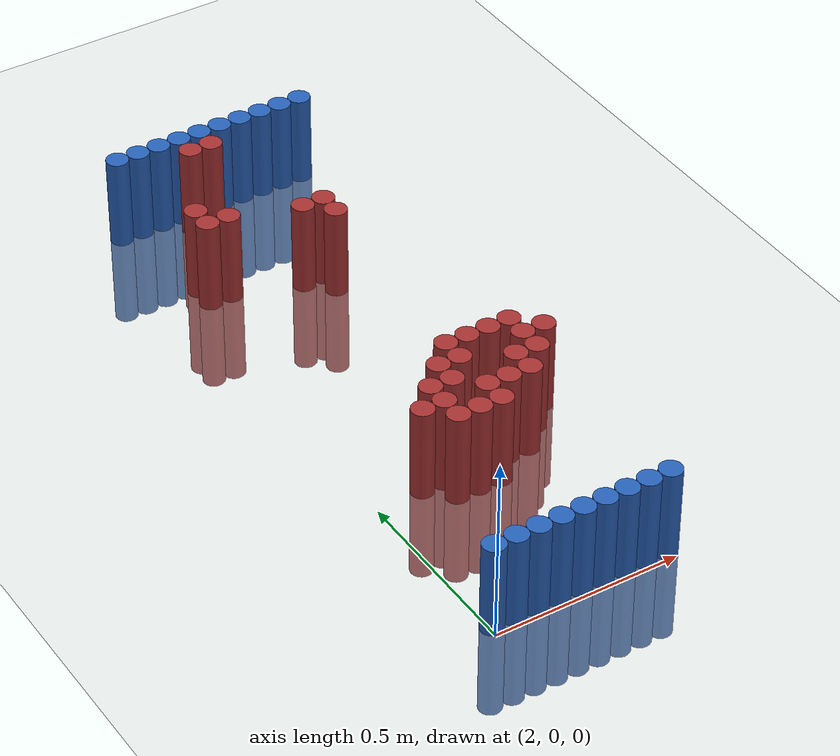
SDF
<sdf version="1.6">
 <world name="default">
  <model name="ground_plane">
   <static>1</static>
   <link name="link">
    <collision name="collision">
     <geometry><plane><normal>0 0 1</normal><size>100 100</size></plane></geometry>
     <surface><friction><ode><mu>100</mu><mu2>50</mu2></ode></friction></surface>
    </collision>
    <visual name="visual">
     <cast_shadows>0</cast_shadows>
     <geometry><plane><normal>0 0 1</normal><size>100 100</size></plane></geometry>
     <material>
      <script><uri>file://media/materials/scripts/gazebo.material</uri><name>Gazebo/Grey</name></script>
     </material>
    </visual>
   </link>
  </model>
  <model name="unit_cylinder_93">
   <static>1</static>
   <pose>2.010000 0.030000 0.000000 0.000000 0.000000 0.000000</pose>
   <link name="link">
    <inertial>
     <mass>1</mass>
     <inertia><ixx>0.145833</ixx><ixy>0</ixy><ixz>0</ixz><iyy>0.145833</iyy><iyz>0</iyz><izz>0.125</izz></inertia>
    </inertial>
    <collision name="collision">
     <geometry><cylinder><radius>0.030000</radius><length>0.5</length></cylinder></geometry>
    </collision>
    <visual name="visual">
     <geometry><cylinder><radius>0.030000</radius><length>0.5</length></cylinder></geometry>
     <material>
      <ambient>0.152000 0.379000 0.720000 1</ambient>
      <diffuse>0.152000 0.379000 0.720000 1</diffuse>
     </material>
     <material>
      <script><name>Gazebo/Grey</name><uri>file://media/materials/scripts/gazebo.material</uri></script>
     </material>
    </visual>
   </link>
  </model>
  <model name="unit_cylinder_94">
   <static>1</static>
   <pose>2.010000 1.770000 0.000000 0.000000 0.000000 0.000000</pose>
   <link name="link">
    <inertial>
     <mass>1</mass>
     <inertia><ixx>0.145833</ixx><ixy>0</ixy><ixz>0</ixz><iyy>0.145833</iyy><iyz>0</iyz><izz>0.125</izz></inertia>
    </inertial>
    <collision name="collision">
     <geometry><cylinder><radius>0.030000</radius><length>0.5</length></cylinder></geometry>
    </collision>
    <visual name="visual">
     <geometry><cylinder><radius>0.030000</radius><length>0.5</length></cylinder></geometry>
     <material>
      <ambient>0.152000 0.379000 0.720000 1</ambient>
      <diffuse>0.152000 0.379000 0.720000 1</diffuse>
     </material>
     <material>
      <script><name>Gazebo/Grey</name><uri>file://media/materials/scripts/gazebo.material</uri></script>
     </material>
    </visual>
   </link>
  </model>
  <model name="unit_cylinder_95">
   <static>1</static>
   <pose>2.070000 1.770000 0.000000 0.000000 0.000000 0.000000</pose>
   <link name="link">
    <inertial>
     <mass>1</mass>
     <inertia><ixx>0.145833</ixx><ixy>0</ixy><ixz>0</ixz><iyy>0.145833</iyy><iyz>0</iyz><izz>0.125</izz></inertia>
    </inertial>
    <collision name="collision">
     <geometry><cylinder><radius>0.030000</radius><length>0.5</length></cylinder></geometry>
    </collision>
    <visual name="visual">
     <geometry><cylinder><radius>0.030000</radius><length>0.5</length></cylinder></geometry>
     <material>
      <ambient>0.152000 0.379000 0.720000 1</ambient>
      <diffuse>0.152000 0.379000 0.720000 1</diffuse>
     </material>
     <material>
      <script><name>Gazebo/Grey</name><uri>file://media/materials/scripts/gazebo.material</uri></script>
     </material>
    </visual>
   </link>
  </model>
  <model name="unit_cylinder_96">
   <static>1</static>
   <pose>2.130000 1.770000 0.000000 0.000000 0.000000 0.000000</pose>
   <link name="link">
    <inertial>
     <mass>1</mass>
     <inertia><ixx>0.145833</ixx><ixy>0</ixy><ixz>0</ixz><iyy>0.145833</iyy><iyz>0</iyz><izz>0.125</izz></inertia>
    </inertial>
    <collision name="collision">
     <geometry><cylinder><radius>0.030000</radius><length>0.5</length></cylinder></geometry>
    </collision>
    <visual name="visual">
     <geometry><cylinder><radius>0.030000</radius><length>0.5</length></cylinder></geometry>
     <material>
      <ambient>0.152000 0.379000 0.720000 1</ambient>
      <diffuse>0.152000 0.379000 0.720000 1</diffuse>
     </material>
     <material>
      <script><name>Gazebo/Grey</name><uri>file://media/materials/scripts/gazebo.material</uri></script>
     </material>
    </visual>
   </link>
  </model>
  <model name="unit_cylinder_97">
   <static>1</static>
   <pose>2.190000 1.770000 0.000000 0.000000 0.000000 0.000000</pose>
   <link name="link">
    <inertial>
     <mass>1</mass>
     <inertia><ixx>0.145833</ixx><ixy>0</ixy><ixz>0</ixz><iyy>0.145833</iyy><iyz>0</iyz><izz>0.125</izz></inertia>
    </inertial>
    <collision name="collision">
     <geometry><cylinder><radius>0.030000</radius><length>0.5</length></cylinder></geometry>
    </collision>
    <visual name="visual">
     <geometry><cylinder><radius>0.030000</radius><length>0.5</length></cylinder></geometry>
     <material>
      <ambient>0.152000 0.379000 0.720000 1</ambient>
      <diffuse>0.152000 0.379000 0.720000 1</diffuse>
     </material>
     <material>
      <script><name>Gazebo/Grey</name><uri>file://media/materials/scripts/gazebo.material</uri></script>
     </material>
    </visual>
   </link>
  </model>
  <model name="unit_cylinder_98">
   <static>1</static>
   <pose>2.250000 1.770000 0.000000 0.000000 0.000000 0.000000</pose>
   <link name="link">
    <inertial>
     <mass>1</mass>
     <inertia><ixx>0.145833</ixx><ixy>0</ixy><ixz>0</ixz><iyy>0.145833</iyy><iyz>0</iyz><izz>0.125</izz></inertia>
    </inertial>
    <collision name="collision">
     <geometry><cylinder><radius>0.030000</radius><length>0.5</length></cylinder></geometry>
    </collision>
    <visual name="visual">
     <geometry><cylinder><radius>0.030000</radius><length>0.5</length></cylinder></geometry>
     <material>
      <ambient>0.152000 0.379000 0.720000 1</ambient>
      <diffuse>0.152000 0.379000 0.720000 1</diffuse>
     </material>
     <material>
      <script><name>Gazebo/Grey</name><uri>file://media/materials/scripts/gazebo.material</uri></script>
     </material>
    </visual>
   </link>
  </model>
  <model name="unit_cylinder_99">
   <static>1</static>
   <pose>2.310000 1.770000 0.000000 0.000000 0.000000 0.000000</pose>
   <link name="link">
    <inertial>
     <mass>1</mass>
     <inertia><ixx>0.145833</ixx><ixy>0</ixy><ixz>0</ixz><iyy>0.145833</iyy><iyz>0</iyz><izz>0.125</izz></inertia>
    </inertial>
    <collision name="collision">
     <geometry><cylinder><radius>0.030000</radius><length>0.5</length></cylinder></geometry>
    </collision>
    <visual name="visual">
     <geometry><cylinder><radius>0.030000</radius><length>0.5</length></cylinder></geometry>
     <material>
      <ambient>0.152000 0.379000 0.720000 1</ambient>
      <diffuse>0.152000 0.379000 0.720000 1</diffuse>
     </material>
     <material>
      <script><name>Gazebo/Grey</name><uri>file://media/materials/scripts/gazebo.material</uri></script>
     </material>
    </visual>
   </link>
  </model>
  <model name="unit_cylinder_100">
   <static>1</static>
   <pose>2.370000 1.770000 0.000000 0.000000 0.000000 0.000000</pose>
   <link name="link">
    <inertial>
     <mass>1</mass>
     <inertia><ixx>0.145833</ixx><ixy>0</ixy><ixz>0</ixz><iyy>0.145833</iyy><iyz>0</iyz><izz>0.125</izz></inertia>
    </inertial>
    <collision name="collision">
     <geometry><cylinder><radius>0.030000</radius><length>0.5</length></cylinder></geometry>
    </collision>
    <visual name="visual">
     <geometry><cylinder><radius>0.030000</radius><length>0.5</length></cylinder></geometry>
     <material>
      <ambient>0.152000 0.379000 0.720000 1</ambient>
      <diffuse>0.152000 0.379000 0.720000 1</diffuse>
     </material>
     <material>
      <script><name>Gazebo/Grey</name><uri>file://media/materials/scripts/gazebo.material</uri></script>
     </material>
    </visual>
   </link>
  </model>
  <model name="unit_cylinder_101">
   <static>1</static>
   <pose>2.430000 1.770000 0.000000 0.000000 0.000000 0.000000</pose>
   <link name="link">
    <inertial>
     <mass>1</mass>
     <inertia><ixx>0.145833</ixx><ixy>0</ixy><ixz>0</ixz><iyy>0.145833</iyy><iyz>0</iyz><izz>0.125</izz></inertia>
    </inertial>
    <collision name="collision">
     <geometry><cylinder><radius>0.030000</radius><length>0.5</length></cylinder></geometry>
    </collision>
    <visual name="visual">
     <geometry><cylinder><radius>0.030000</radius><length>0.5</length></cylinder></geometry>
     <material>
      <ambient>0.152000 0.379000 0.720000 1</ambient>
      <diffuse>0.152000 0.379000 0.720000 1</diffuse>
     </material>
     <material>
      <script><name>Gazebo/Grey</name><uri>file://media/materials/scripts/gazebo.material</uri></script>
     </material>
    </visual>
   </link>
  </model>
  <model name="unit_cylinder_102">
   <static>1</static>
   <pose>2.490000 1.770000 0.000000 0.000000 0.000000 0.000000</pose>
   <link name="link">
    <inertial>
     <mass>1</mass>
     <inertia><ixx>0.145833</ixx><ixy>0</ixy><ixz>0</ixz><iyy>0.145833</iyy><iyz>0</iyz><izz>0.125</izz></inertia>
    </inertial>
    <collision name="collision">
     <geometry><cylinder><radius>0.030000</radius><length>0.5</length></cylinder></geometry>
    </collision>
    <visual name="visual">
     <geometry><cylinder><radius>0.030000</radius><length>0.5</length></cylinder></geometry>
     <material>
      <ambient>0.152000 0.379000 0.720000 1</ambient>
      <diffuse>0.152000 0.379000 0.720000 1</diffuse>
     </material>
     <material>
      <script><name>Gazebo/Grey</name><uri>file://media/materials/scripts/gazebo.material</uri></script>
     </material>
    </visual>
   </link>
  </model>
  <model name="unit_cylinder_103">
   <static>1</static>
   <pose>2.550000 1.770000 0.000000 0.000000 0.000000 0.000000</pose>
   <link name="link">
    <inertial>
     <mass>1</mass>
     <inertia><ixx>0.145833</ixx><ixy>0</ixy><ixz>0</ixz><iyy>0.145833</iyy><iyz>0</iyz><izz>0.125</izz></inertia>
    </inertial>
    <collision name="collision">
     <geometry><cylinder><radius>0.030000</radius><length>0.5</length></cylinder></geometry>
    </collision>
    <visual name="visual">
     <geometry><cylinder><radius>0.030000</radius><length>0.5</length></cylinder></geometry>
     <material>
      <ambient>0.152000 0.379000 0.720000 1</ambient>
      <diffuse>0.152000 0.379000 0.720000 1</diffuse>
     </material>
     <material>
      <script><name>Gazebo/Grey</name><uri>file://media/materials/scripts/gazebo.material</uri></script>
     </material>
    </visual>
   </link>
  </model>
  <model name="unit_cylinder_125">
   <static>1</static>
   <pose>2.190000 1.710000 0.000000 0.000000 0.000000 0.000000</pose>
   <link name="link">
    <inertial>
     <mass>1</mass>
     <inertia><ixx>0.145833</ixx><ixy>0</ixy><ixz>0</ixz><iyy>0.145833</iyy><iyz>0</iyz><izz>0.125</izz></inertia>
    </inertial>
    <collision name="collision">
     <geometry><cylinder><radius>0.030000</radius><length>0.5</length></cylinder></geometry>
    </collision>
    <visual name="visual">
     <geometry><cylinder><radius>0.030000</radius><length>0.5</length></cylinder></geometry>
     <material>
      <ambient>0.648000 0.192000 0.192000 1</ambient>
      <diffuse>0.648000 0.192000 0.192000 1</diffuse>
     </material>
     <material>
      <script><name>Gazebo/Grey</name><uri>file://media/materials/scripts/gazebo.material</uri></script>
     </material>
    </visual>
   </link>
  </model>
  <model name="unit_cylinder_126">
   <static>1</static>
   <pose>2.250000 1.710000 0.000000 0.000000 0.000000 0.000000</pose>
   <link name="link">
    <inertial>
     <mass>1</mass>
     <inertia><ixx>0.145833</ixx><ixy>0</ixy><ixz>0</ixz><iyy>0.145833</iyy><iyz>0</iyz><izz>0.125</izz></inertia>
    </inertial>
    <collision name="collision">
     <geometry><cylinder><radius>0.030000</radius><length>0.5</length></cylinder></geometry>
    </collision>
    <visual name="visual">
     <geometry><cylinder><radius>0.030000</radius><length>0.5</length></cylinder></geometry>
     <material>
      <ambient>0.648000 0.192000 0.192000 1</ambient>
      <diffuse>0.648000 0.192000 0.192000 1</diffuse>
     </material>
     <material>
      <script><name>Gazebo/Grey</name><uri>file://media/materials/scripts/gazebo.material</uri></script>
     </material>
    </visual>
   </link>
  </model>
  <model name="unit_cylinder_129">
   <static>1</static>
   <pose>2.070000 1.470000 0.000000 0.000000 0.000000 0.000000</pose>
   <link name="link">
    <inertial>
     <mass>1</mass>
     <inertia><ixx>0.145833</ixx><ixy>0</ixy><ixz>0</ixz><iyy>0.145833</iyy><iyz>0</iyz><izz>0.125</izz></inertia>
    </inertial>
    <collision name="collision">
     <geometry><cylinder><radius>0.030000</radius><length>0.5</length></cylinder></geometry>
    </collision>
    <visual name="visual">
     <geometry><cylinder><radius>0.030000</radius><length>0.5</length></cylinder></geometry>
     <material>
      <ambient>0.648000 0.192000 0.192000 1</ambient>
      <diffuse>0.648000 0.192000 0.192000 1</diffuse>
     </material>
     <material>
      <script><name>Gazebo/Grey</name><uri>file://media/materials/scripts/gazebo.material</uri></script>
     </material>
    </visual>
   </link>
  </model>
  <model name="unit_cylinder_130">
   <static>1</static>
   <pose>2.070000 1.410000 0.000000 0.000000 0.000000 0.000000</pose>
   <link name="link">
    <inertial>
     <mass>1</mass>
     <inertia><ixx>0.145833</ixx><ixy>0</ixy><ixz>0</ixz><iyy>0.145833</iyy><iyz>0</iyz><izz>0.125</izz></inertia>
    </inertial>
    <collision name="collision">
     <geometry><cylinder><radius>0.030000</radius><length>0.5</length></cylinder></geometry>
    </collision>
    <visual name="visual">
     <geometry><cylinder><radius>0.030000</radius><length>0.5</length></cylinder></geometry>
     <material>
      <ambient>0.648000 0.192000 0.192000 1</ambient>
      <diffuse>0.648000 0.192000 0.192000 1</diffuse>
     </material>
     <material>
      <script><name>Gazebo/Grey</name><uri>file://media/materials/scripts/gazebo.material</uri></script>
     </material>
    </visual>
   </link>
  </model>
  <model name="unit_cylinder_131">
   <static>1</static>
   <pose>2.130000 1.410000 0.000000 0.000000 0.000000 0.000000</pose>
   <link name="link">
    <inertial>
     <mass>1</mass>
     <inertia><ixx>0.145833</ixx><ixy>0</ixy><ixz>0</ixz><iyy>0.145833</iyy><iyz>0</iyz><izz>0.125</izz></inertia>
    </inertial>
    <collision name="collision">
     <geometry><cylinder><radius>0.030000</radius><length>0.5</length></cylinder></geometry>
    </collision>
    <visual name="visual">
     <geometry><cylinder><radius>0.030000</radius><length>0.5</length></cylinder></geometry>
     <material>
      <ambient>0.648000 0.192000 0.192000 1</ambient>
      <diffuse>0.648000 0.192000 0.192000 1</diffuse>
     </material>
     <material>
      <script><name>Gazebo/Grey</name><uri>file://media/materials/scripts/gazebo.material</uri></script>
     </material>
    </visual>
   </link>
  </model>
  <model name="unit_cylinder_132">
   <static>1</static>
   <pose>2.310000 1.350000 0.000000 0.000000 0.000000 0.000000</pose>
   <link name="link">
    <inertial>
     <mass>1</mass>
     <inertia><ixx>0.145833</ixx><ixy>0</ixy><ixz>0</ixz><iyy>0.145833</iyy><iyz>0</iyz><izz>0.125</izz></inertia>
    </inertial>
    <collision name="collision">
     <geometry><cylinder><radius>0.030000</radius><length>0.5</length></cylinder></geometry>
    </collision>
    <visual name="visual">
     <geometry><cylinder><radius>0.030000</radius><length>0.5</length></cylinder></geometry>
     <material>
      <ambient>0.648000 0.192000 0.192000 1</ambient>
      <diffuse>0.648000 0.192000 0.192000 1</diffuse>
     </material>
     <material>
      <script><name>Gazebo/Grey</name><uri>file://media/materials/scripts/gazebo.material</uri></script>
     </material>
    </visual>
   </link>
  </model>
  <model name="unit_cylinder_133">
   <static>1</static>
   <pose>2.370000 1.350000 0.000000 0.000000 0.000000 0.000000</pose>
   <link name="link">
    <inertial>
     <mass>1</mass>
     <inertia><ixx>0.145833</ixx><ixy>0</ixy><ixz>0</ixz><iyy>0.145833</iyy><iyz>0</iyz><izz>0.125</izz></inertia>
    </inertial>
    <collision name="collision">
     <geometry><cylinder><radius>0.030000</radius><length>0.5</length></cylinder></geometry>
    </collision>
    <visual name="visual">
     <geometry><cylinder><radius>0.030000</radius><length>0.5</length></cylinder></geometry>
     <material>
      <ambient>0.648000 0.192000 0.192000 1</ambient>
      <diffuse>0.648000 0.192000 0.192000 1</diffuse>
     </material>
     <material>
      <script><name>Gazebo/Grey</name><uri>file://media/materials/scripts/gazebo.material</uri></script>
     </material>
    </visual>
   </link>
  </model>
  <model name="unit_cylinder_134">
   <static>1</static>
   <pose>2.370000 1.290000 0.000000 0.000000 0.000000 0.000000</pose>
   <link name="link">
    <inertial>
     <mass>1</mass>
     <inertia><ixx>0.145833</ixx><ixy>0</ixy><ixz>0</ixz><iyy>0.145833</iyy><iyz>0</iyz><izz>0.125</izz></inertia>
    </inertial>
    <collision name="collision">
     <geometry><cylinder><radius>0.030000</radius><length>0.5</length></cylinder></geometry>
    </collision>
    <visual name="visual">
     <geometry><cylinder><radius>0.030000</radius><length>0.5</length></cylinder></geometry>
     <material>
      <ambient>0.648000 0.192000 0.192000 1</ambient>
      <diffuse>0.648000 0.192000 0.192000 1</diffuse>
     </material>
     <material>
      <script><name>Gazebo/Grey</name><uri>file://media/materials/scripts/gazebo.material</uri></script>
     </material>
    </visual>
   </link>
  </model>
  <model name="unit_cylinder_143">
   <static>1</static>
   <pose>2.310000 0.690000 0.000000 0.000000 0.000000 0.000000</pose>
   <link name="link">
    <inertial>
     <mass>1</mass>
     <inertia><ixx>0.145833</ixx><ixy>0</ixy><ixz>0</ixz><iyy>0.145833</iyy><iyz>0</iyz><izz>0.125</izz></inertia>
    </inertial>
    <collision name="collision">
     <geometry><cylinder><radius>0.030000</radius><length>0.5</length></cylinder></geometry>
    </collision>
    <visual name="visual">
     <geometry><cylinder><radius>0.030000</radius><length>0.5</length></cylinder></geometry>
     <material>
      <ambient>0.648000 0.192000 0.192000 1</ambient>
      <diffuse>0.648000 0.192000 0.192000 1</diffuse>
     </material>
     <material>
      <script><name>Gazebo/Grey</name><uri>file://media/materials/scripts/gazebo.material</uri></script>
     </material>
    </visual>
   </link>
  </model>
  <model name="unit_cylinder_144">
   <static>1</static>
   <pose>2.370000 0.690000 0.000000 0.000000 0.000000 0.000000</pose>
   <link name="link">
    <inertial>
     <mass>1</mass>
     <inertia><ixx>0.145833</ixx><ixy>0</ixy><ixz>0</ixz><iyy>0.145833</iyy><iyz>0</iyz><izz>0.125</izz></inertia>
    </inertial>
    <collision name="collision">
     <geometry><cylinder><radius>0.030000</radius><length>0.5</length></cylinder></geometry>
    </collision>
    <visual name="visual">
     <geometry><cylinder><radius>0.030000</radius><length>0.5</length></cylinder></geometry>
     <material>
      <ambient>0.648000 0.192000 0.192000 1</ambient>
      <diffuse>0.648000 0.192000 0.192000 1</diffuse>
     </material>
     <material>
      <script><name>Gazebo/Grey</name><uri>file://media/materials/scripts/gazebo.material</uri></script>
     </material>
    </visual>
   </link>
  </model>
  <model name="unit_cylinder_145">
   <static>1</static>
   <pose>2.430000 0.690000 0.000000 0.000000 0.000000 0.000000</pose>
   <link name="link">
    <inertial>
     <mass>1</mass>
     <inertia><ixx>0.145833</ixx><ixy>0</ixy><ixz>0</ixz><iyy>0.145833</iyy><iyz>0</iyz><izz>0.125</izz></inertia>
    </inertial>
    <collision name="collision">
     <geometry><cylinder><radius>0.030000</radius><length>0.5</length></cylinder></geometry>
    </collision>
    <visual name="visual">
     <geometry><cylinder><radius>0.030000</radius><length>0.5</length></cylinder></geometry>
     <material>
      <ambient>0.648000 0.192000 0.192000 1</ambient>
      <diffuse>0.648000 0.192000 0.192000 1</diffuse>
     </material>
     <material>
      <script><name>Gazebo/Grey</name><uri>file://media/materials/scripts/gazebo.material</uri></script>
     </material>
    </visual>
   </link>
  </model>
  <model name="unit_cylinder_146">
   <static>1</static>
   <pose>2.490000 0.690000 0.000000 0.000000 0.000000 0.000000</pose>
   <link name="link">
    <inertial>
     <mass>1</mass>
     <inertia><ixx>0.145833</ixx><ixy>0</ixy><ixz>0</ixz><iyy>0.145833</iyy><iyz>0</iyz><izz>0.125</izz></inertia>
    </inertial>
    <collision name="collision">
     <geometry><cylinder><radius>0.030000</radius><length>0.5</length></cylinder></geometry>
    </collision>
    <visual name="visual">
     <geometry><cylinder><radius>0.030000</radius><length>0.5</length></cylinder></geometry>
     <material>
      <ambient>0.648000 0.192000 0.192000 1</ambient>
      <diffuse>0.648000 0.192000 0.192000 1</diffuse>
     </material>
     <material>
      <script><name>Gazebo/Grey</name><uri>file://media/materials/scripts/gazebo.material</uri></script>
     </material>
    </visual>
   </link>
  </model>
  <model name="unit_cylinder_149">
   <static>1</static>
   <pose>2.250000 0.630000 0.000000 0.000000 0.000000 0.000000</pose>
   <link name="link">
    <inertial>
     <mass>1</mass>
     <inertia><ixx>0.145833</ixx><ixy>0</ixy><ixz>0</ixz><iyy>0.145833</iyy><iyz>0</iyz><izz>0.125</izz></inertia>
    </inertial>
    <collision name="collision">
     <geometry><cylinder><radius>0.030000</radius><length>0.5</length></cylinder></geometry>
    </collision>
    <visual name="visual">
     <geometry><cylinder><radius>0.030000</radius><length>0.5</length></cylinder></geometry>
     <material>
      <ambient>0.648000 0.192000 0.192000 1</ambient>
      <diffuse>0.648000 0.192000 0.192000 1</diffuse>
     </material>
     <material>
      <script><name>Gazebo/Grey</name><uri>file://media/materials/scripts/gazebo.material</uri></script>
     </material>
    </visual>
   </link>
  </model>
  <model name="unit_cylinder_150">
   <static>1</static>
   <pose>2.310000 0.630000 0.000000 0.000000 0.000000 0.000000</pose>
   <link name="link">
    <inertial>
     <mass>1</mass>
     <inertia><ixx>0.145833</ixx><ixy>0</ixy><ixz>0</ixz><iyy>0.145833</iyy><iyz>0</iyz><izz>0.125</izz></inertia>
    </inertial>
    <collision name="collision">
     <geometry><cylinder><radius>0.030000</radius><length>0.5</length></cylinder></geometry>
    </collision>
    <visual name="visual">
     <geometry><cylinder><radius>0.030000</radius><length>0.5</length></cylinder></geometry>
     <material>
      <ambient>0.648000 0.192000 0.192000 1</ambient>
      <diffuse>0.648000 0.192000 0.192000 1</diffuse>
     </material>
     <material>
      <script><name>Gazebo/Grey</name><uri>file://media/materials/scripts/gazebo.material</uri></script>
     </material>
    </visual>
   </link>
  </model>
  <model name="unit_cylinder_151">
   <static>1</static>
   <pose>2.490000 0.630000 0.000000 0.000000 0.000000 0.000000</pose>
   <link name="link">
    <inertial>
     <mass>1</mass>
     <inertia><ixx>0.145833</ixx><ixy>0</ixy><ixz>0</ixz><iyy>0.145833</iyy><iyz>0</iyz><izz>0.125</izz></inertia>
    </inertial>
    <collision name="collision">
     <geometry><cylinder><radius>0.030000</radius><length>0.5</length></cylinder></geometry>
    </collision>
    <visual name="visual">
     <geometry><cylinder><radius>0.030000</radius><length>0.5</length></cylinder></geometry>
     <material>
      <ambient>0.648000 0.192000 0.192000 1</ambient>
      <diffuse>0.648000 0.192000 0.192000 1</diffuse>
     </material>
     <material>
      <script><name>Gazebo/Grey</name><uri>file://media/materials/scripts/gazebo.material</uri></script>
     </material>
    </visual>
   </link>
  </model>
  <model name="unit_cylinder_152">
   <static>1</static>
   <pose>2.550000 0.630000 0.000000 0.000000 0.000000 0.000000</pose>
   <link name="link">
    <inertial>
     <mass>1</mass>
     <inertia><ixx>0.145833</ixx><ixy>0</ixy><ixz>0</ixz><iyy>0.145833</iyy><iyz>0</iyz><izz>0.125</izz></inertia>
    </inertial>
    <collision name="collision">
     <geometry><cylinder><radius>0.030000</radius><length>0.5</length></cylinder></geometry>
    </collision>
    <visual name="visual">
     <geometry><cylinder><radius>0.030000</radius><length>0.5</length></cylinder></geometry>
     <material>
      <ambient>0.648000 0.192000 0.192000 1</ambient>
      <diffuse>0.648000 0.192000 0.192000 1</diffuse>
     </material>
     <material>
      <script><name>Gazebo/Grey</name><uri>file://media/materials/scripts/gazebo.material</uri></script>
     </material>
    </visual>
   </link>
  </model>
  <model name="unit_cylinder_155">
   <static>1</static>
   <pose>2.190000 0.570000 0.000000 0.000000 0.000000 0.000000</pose>
   <link name="link">
    <inertial>
     <mass>1</mass>
     <inertia><ixx>0.145833</ixx><ixy>0</ixy><ixz>0</ixz><iyy>0.145833</iyy><iyz>0</iyz><izz>0.125</izz></inertia>
    </inertial>
    <collision name="collision">
     <geometry><cylinder><radius>0.030000</radius><length>0.5</length></cylinder></geometry>
    </collision>
    <visual name="visual">
     <geometry><cylinder><radius>0.030000</radius><length>0.5</length></cylinder></geometry>
     <material>
      <ambient>0.648000 0.192000 0.192000 1</ambient>
      <diffuse>0.648000 0.192000 0.192000 1</diffuse>
     </material>
     <material>
      <script><name>Gazebo/Grey</name><uri>file://media/materials/scripts/gazebo.material</uri></script>
     </material>
    </visual>
   </link>
  </model>
  <model name="unit_cylinder_156">
   <static>1</static>
   <pose>2.250000 0.570000 0.000000 0.000000 0.000000 0.000000</pose>
   <link name="link">
    <inertial>
     <mass>1</mass>
     <inertia><ixx>0.145833</ixx><ixy>0</ixy><ixz>0</ixz><iyy>0.145833</iyy><iyz>0</iyz><izz>0.125</izz></inertia>
    </inertial>
    <collision name="collision">
     <geometry><cylinder><radius>0.030000</radius><length>0.5</length></cylinder></geometry>
    </collision>
    <visual name="visual">
     <geometry><cylinder><radius>0.030000</radius><length>0.5</length></cylinder></geometry>
     <material>
      <ambient>0.648000 0.192000 0.192000 1</ambient>
      <diffuse>0.648000 0.192000 0.192000 1</diffuse>
     </material>
     <material>
      <script><name>Gazebo/Grey</name><uri>file://media/materials/scripts/gazebo.material</uri></script>
     </material>
    </visual>
   </link>
  </model>
  <model name="unit_cylinder_157">
   <static>1</static>
   <pose>2.430000 0.570000 0.000000 0.000000 0.000000 0.000000</pose>
   <link name="link">
    <inertial>
     <mass>1</mass>
     <inertia><ixx>0.145833</ixx><ixy>0</ixy><ixz>0</ixz><iyy>0.145833</iyy><iyz>0</iyz><izz>0.125</izz></inertia>
    </inertial>
    <collision name="collision">
     <geometry><cylinder><radius>0.030000</radius><length>0.5</length></cylinder></geometry>
    </collision>
    <visual name="visual">
     <geometry><cylinder><radius>0.030000</radius><length>0.5</length></cylinder></geometry>
     <material>
      <ambient>0.648000 0.192000 0.192000 1</ambient>
      <diffuse>0.648000 0.192000 0.192000 1</diffuse>
     </material>
     <material>
      <script><name>Gazebo/Grey</name><uri>file://media/materials/scripts/gazebo.material</uri></script>
     </material>
    </visual>
   </link>
  </model>
  <model name="unit_cylinder_158">
   <static>1</static>
   <pose>2.490000 0.570000 0.000000 0.000000 0.000000 0.000000</pose>
   <link name="link">
    <inertial>
     <mass>1</mass>
     <inertia><ixx>0.145833</ixx><ixy>0</ixy><ixz>0</ixz><iyy>0.145833</iyy><iyz>0</iyz><izz>0.125</izz></inertia>
    </inertial>
    <collision name="collision">
     <geometry><cylinder><radius>0.030000</radius><length>0.5</length></cylinder></geometry>
    </collision>
    <visual name="visual">
     <geometry><cylinder><radius>0.030000</radius><length>0.5</length></cylinder></geometry>
     <material>
      <ambient>0.648000 0.192000 0.192000 1</ambient>
      <diffuse>0.648000 0.192000 0.192000 1</diffuse>
     </material>
     <material>
      <script><name>Gazebo/Grey</name><uri>file://media/materials/scripts/gazebo.material</uri></script>
     </material>
    </visual>
   </link>
  </model>
  <model name="unit_cylinder_161">
   <static>1</static>
   <pose>2.130000 0.510000 0.000000 0.000000 0.000000 0.000000</pose>
   <link name="link">
    <inertial>
     <mass>1</mass>
     <inertia><ixx>0.145833</ixx><ixy>0</ixy><ixz>0</ixz><iyy>0.145833</iyy><iyz>0</iyz><izz>0.125</izz></inertia>
    </inertial>
    <collision name="collision">
     <geometry><cylinder><radius>0.030000</radius><length>0.5</length></cylinder></geometry>
    </collision>
    <visual name="visual">
     <geometry><cylinder><radius>0.030000</radius><length>0.5</length></cylinder></geometry>
     <material>
      <ambient>0.648000 0.192000 0.192000 1</ambient>
      <diffuse>0.648000 0.192000 0.192000 1</diffuse>
     </material>
     <material>
      <script><name>Gazebo/Grey</name><uri>file://media/materials/scripts/gazebo.material</uri></script>
     </material>
    </visual>
   </link>
  </model>
  <model name="unit_cylinder_162">
   <static>1</static>
   <pose>2.190000 0.510000 0.000000 0.000000 0.000000 0.000000</pose>
   <link name="link">
    <inertial>
     <mass>1</mass>
     <inertia><ixx>0.145833</ixx><ixy>0</ixy><ixz>0</ixz><iyy>0.145833</iyy><iyz>0</iyz><izz>0.125</izz></inertia>
    </inertial>
    <collision name="collision">
     <geometry><cylinder><radius>0.030000</radius><length>0.5</length></cylinder></geometry>
    </collision>
    <visual name="visual">
     <geometry><cylinder><radius>0.030000</radius><length>0.5</length></cylinder></geometry>
     <material>
      <ambient>0.648000 0.192000 0.192000 1</ambient>
      <diffuse>0.648000 0.192000 0.192000 1</diffuse>
     </material>
     <material>
      <script><name>Gazebo/Grey</name><uri>file://media/materials/scripts/gazebo.material</uri></script>
     </material>
    </visual>
   </link>
  </model>
  <model name="unit_cylinder_163">
   <static>1</static>
   <pose>2.310000 0.510000 0.000000 0.000000 0.000000 0.000000</pose>
   <link name="link">
    <inertial>
     <mass>1</mass>
     <inertia><ixx>0.145833</ixx><ixy>0</ixy><ixz>0</ixz><iyy>0.145833</iyy><iyz>0</iyz><izz>0.125</izz></inertia>
    </inertial>
    <collision name="collision">
     <geometry><cylinder><radius>0.030000</radius><length>0.5</length></cylinder></geometry>
    </collision>
    <visual name="visual">
     <geometry><cylinder><radius>0.030000</radius><length>0.5</length></cylinder></geometry>
     <material>
      <ambient>0.648000 0.192000 0.192000 1</ambient>
      <diffuse>0.648000 0.192000 0.192000 1</diffuse>
     </material>
     <material>
      <script><name>Gazebo/Grey</name><uri>file://media/materials/scripts/gazebo.material</uri></script>
     </material>
    </visual>
   </link>
  </model>
  <model name="unit_cylinder_164">
   <static>1</static>
   <pose>2.370000 0.510000 0.000000 0.000000 0.000000 0.000000</pose>
   <link name="link">
    <inertial>
     <mass>1</mass>
     <inertia><ixx>0.145833</ixx><ixy>0</ixy><ixz>0</ixz><iyy>0.145833</iyy><iyz>0</iyz><izz>0.125</izz></inertia>
    </inertial>
    <collision name="collision">
     <geometry><cylinder><radius>0.030000</radius><length>0.5</length></cylinder></geometry>
    </collision>
    <visual name="visual">
     <geometry><cylinder><radius>0.030000</radius><length>0.5</length></cylinder></geometry>
     <material>
      <ambient>0.648000 0.192000 0.192000 1</ambient>
      <diffuse>0.648000 0.192000 0.192000 1</diffuse>
     </material>
     <material>
      <script><name>Gazebo/Grey</name><uri>file://media/materials/scripts/gazebo.material</uri></script>
     </material>
    </visual>
   </link>
  </model>
  <model name="unit_cylinder_165">
   <static>1</static>
   <pose>2.430000 0.510000 0.000000 0.000000 0.000000 0.000000</pose>
   <link name="link">
    <inertial>
     <mass>1</mass>
     <inertia><ixx>0.145833</ixx><ixy>0</ixy><ixz>0</ixz><iyy>0.145833</iyy><iyz>0</iyz><izz>0.125</izz></inertia>
    </inertial>
    <collision name="collision">
     <geometry><cylinder><radius>0.030000</radius><length>0.5</length></cylinder></geometry>
    </collision>
    <visual name="visual">
     <geometry><cylinder><radius>0.030000</radius><length>0.5</length></cylinder></geometry>
     <material>
      <ambient>0.648000 0.192000 0.192000 1</ambient>
      <diffuse>0.648000 0.192000 0.192000 1</diffuse>
     </material>
     <material>
      <script><name>Gazebo/Grey</name><uri>file://media/materials/scripts/gazebo.material</uri></script>
     </material>
    </visual>
   </link>
  </model>
  <model name="unit_cylinder_168">
   <static>1</static>
   <pose>2.190000 0.450000 0.000000 0.000000 0.000000 0.000000</pose>
   <link name="link">
    <inertial>
     <mass>1</mass>
     <inertia><ixx>0.145833</ixx><ixy>0</ixy><ixz>0</ixz><iyy>0.145833</iyy><iyz>0</iyz><izz>0.125</izz></inertia>
    </inertial>
    <collision name="collision">
     <geometry><cylinder><radius>0.030000</radius><length>0.5</length></cylinder></geometry>
    </collision>
    <visual name="visual">
     <geometry><cylinder><radius>0.030000</radius><length>0.5</length></cylinder></geometry>
     <material>
      <ambient>0.648000 0.192000 0.192000 1</ambient>
      <diffuse>0.648000 0.192000 0.192000 1</diffuse>
     </material>
     <material>
      <script><name>Gazebo/Grey</name><uri>file://media/materials/scripts/gazebo.material</uri></script>
     </material>
    </visual>
   </link>
  </model>
  <model name="unit_cylinder_169">
   <static>1</static>
   <pose>2.250000 0.450000 0.000000 0.000000 0.000000 0.000000</pose>
   <link name="link">
    <inertial>
     <mass>1</mass>
     <inertia><ixx>0.145833</ixx><ixy>0</ixy><ixz>0</ixz><iyy>0.145833</iyy><iyz>0</iyz><izz>0.125</izz></inertia>
    </inertial>
    <collision name="collision">
     <geometry><cylinder><radius>0.030000</radius><length>0.5</length></cylinder></geometry>
    </collision>
    <visual name="visual">
     <geometry><cylinder><radius>0.030000</radius><length>0.5</length></cylinder></geometry>
     <material>
      <ambient>0.648000 0.192000 0.192000 1</ambient>
      <diffuse>0.648000 0.192000 0.192000 1</diffuse>
     </material>
     <material>
      <script><name>Gazebo/Grey</name><uri>file://media/materials/scripts/gazebo.material</uri></script>
     </material>
    </visual>
   </link>
  </model>
  <model name="unit_cylinder_170">
   <static>1</static>
   <pose>2.310000 0.450000 0.000000 0.000000 0.000000 0.000000</pose>
   <link name="link">
    <inertial>
     <mass>1</mass>
     <inertia><ixx>0.145833</ixx><ixy>0</ixy><ixz>0</ixz><iyy>0.145833</iyy><iyz>0</iyz><izz>0.125</izz></inertia>
    </inertial>
    <collision name="collision">
     <geometry><cylinder><radius>0.030000</radius><length>0.5</length></cylinder></geometry>
    </collision>
    <visual name="visual">
     <geometry><cylinder><radius>0.030000</radius><length>0.5</length></cylinder></geometry>
     <material>
      <ambient>0.648000 0.192000 0.192000 1</ambient>
      <diffuse>0.648000 0.192000 0.192000 1</diffuse>
     </material>
     <material>
      <script><name>Gazebo/Grey</name><uri>file://media/materials/scripts/gazebo.material</uri></script>
     </material>
    </visual>
   </link>
  </model>
  <model name="unit_cylinder_203">
   <static>1</static>
   <pose>2.070000 0.030000 0.000000 0.000000 0.000000 0.000000</pose>
   <link name="link">
    <inertial>
     <mass>1</mass>
     <inertia><ixx>0.145833</ixx><ixy>0</ixy><ixz>0</ixz><iyy>0.145833</iyy><iyz>0</iyz><izz>0.125</izz></inertia>
    </inertial>
    <collision name="collision">
     <geometry><cylinder><radius>0.030000</radius><length>0.5</length></cylinder></geometry>
    </collision>
    <visual name="visual">
     <geometry><cylinder><radius>0.030000</radius><length>0.5</length></cylinder></geometry>
     <material>
      <ambient>0.152000 0.379000 0.720000 1</ambient>
      <diffuse>0.152000 0.379000 0.720000 1</diffuse>
     </material>
     <material>
      <script><name>Gazebo/Grey</name><uri>file://media/materials/scripts/gazebo.material</uri></script>
     </material>
    </visual>
   </link>
  </model>
  <model name="unit_cylinder_204">
   <static>1</static>
   <pose>2.130000 0.030000 0.000000 0.000000 0.000000 0.000000</pose>
   <link name="link">
    <inertial>
     <mass>1</mass>
     <inertia><ixx>0.145833</ixx><ixy>0</ixy><ixz>0</ixz><iyy>0.145833</iyy><iyz>0</iyz><izz>0.125</izz></inertia>
    </inertial>
    <collision name="collision">
     <geometry><cylinder><radius>0.030000</radius><length>0.5</length></cylinder></geometry>
    </collision>
    <visual name="visual">
     <geometry><cylinder><radius>0.030000</radius><length>0.5</length></cylinder></geometry>
     <material>
      <ambient>0.152000 0.379000 0.720000 1</ambient>
      <diffuse>0.152000 0.379000 0.720000 1</diffuse>
     </material>
     <material>
      <script><name>Gazebo/Grey</name><uri>file://media/materials/scripts/gazebo.material</uri></script>
     </material>
    </visual>
   </link>
  </model>
  <model name="unit_cylinder_205">
   <static>1</static>
   <pose>2.190000 0.030000 0.000000 0.000000 0.000000 0.000000</pose>
   <link name="link">
    <inertial>
     <mass>1</mass>
     <inertia><ixx>0.145833</ixx><ixy>0</ixy><ixz>0</ixz><iyy>0.145833</iyy><iyz>0</iyz><izz>0.125</izz></inertia>
    </inertial>
    <collision name="collision">
     <geometry><cylinder><radius>0.030000</radius><length>0.5</length></cylinder></geometry>
    </collision>
    <visual name="visual">
     <geometry><cylinder><radius>0.030000</radius><length>0.5</length></cylinder></geometry>
     <material>
      <ambient>0.152000 0.379000 0.720000 1</ambient>
      <diffuse>0.152000 0.379000 0.720000 1</diffuse>
     </material>
     <material>
      <script><name>Gazebo/Grey</name><uri>file://media/materials/scripts/gazebo.material</uri></script>
     </material>
    </visual>
   </link>
  </model>
  <model name="unit_cylinder_206">
   <static>1</static>
   <pose>2.250000 0.030000 0.000000 0.000000 0.000000 0.000000</pose>
   <link name="link">
    <inertial>
     <mass>1</mass>
     <inertia><ixx>0.145833</ixx><ixy>0</ixy><ixz>0</ixz><iyy>0.145833</iyy><iyz>0</iyz><izz>0.125</izz></inertia>
    </inertial>
    <collision name="collision">
     <geometry><cylinder><radius>0.030000</radius><length>0.5</length></cylinder></geometry>
    </collision>
    <visual name="visual">
     <geometry><cylinder><radius>0.030000</radius><length>0.5</length></cylinder></geometry>
     <material>
      <ambient>0.152000 0.379000 0.720000 1</ambient>
      <diffuse>0.152000 0.379000 0.720000 1</diffuse>
     </material>
     <material>
      <script><name>Gazebo/Grey</name><uri>file://media/materials/scripts/gazebo.material</uri></script>
     </material>
    </visual>
   </link>
  </model>
  <model name="unit_cylinder_207">
   <static>1</static>
   <pose>2.310000 0.030000 0.000000 0.000000 0.000000 0.000000</pose>
   <link name="link">
    <inertial>
     <mass>1</mass>
     <inertia><ixx>0.145833</ixx><ixy>0</ixy><ixz>0</ixz><iyy>0.145833</iyy><iyz>0</iyz><izz>0.125</izz></inertia>
    </inertial>
    <collision name="collision">
     <geometry><cylinder><radius>0.030000</radius><length>0.5</length></cylinder></geometry>
    </collision>
    <visual name="visual">
     <geometry><cylinder><radius>0.030000</radius><length>0.5</length></cylinder></geometry>
     <material>
      <ambient>0.152000 0.379000 0.720000 1</ambient>
      <diffuse>0.152000 0.379000 0.720000 1</diffuse>
     </material>
     <material>
      <script><name>Gazebo/Grey</name><uri>file://media/materials/scripts/gazebo.material</uri></script>
     </material>
    </visual>
   </link>
  </model>
  <model name="unit_cylinder_208">
   <static>1</static>
   <pose>2.370000 0.030000 0.000000 0.000000 0.000000 0.000000</pose>
   <link name="link">
    <inertial>
     <mass>1</mass>
     <inertia><ixx>0.145833</ixx><ixy>0</ixy><ixz>0</ixz><iyy>0.145833</iyy><iyz>0</iyz><izz>0.125</izz></inertia>
    </inertial>
    <collision name="collision">
     <geometry><cylinder><radius>0.030000</radius><length>0.5</length></cylinder></geometry>
    </collision>
    <visual name="visual">
     <geometry><cylinder><radius>0.030000</radius><length>0.5</length></cylinder></geometry>
     <material>
      <ambient>0.152000 0.379000 0.720000 1</ambient>
      <diffuse>0.152000 0.379000 0.720000 1</diffuse>
     </material>
     <material>
      <script><name>Gazebo/Grey</name><uri>file://media/materials/scripts/gazebo.material</uri></script>
     </material>
    </visual>
   </link>
  </model>
  <model name="unit_cylinder_209">
   <static>1</static>
   <pose>2.430000 0.030000 0.000000 0.000000 0.000000 0.000000</pose>
   <link name="link">
    <inertial>
     <mass>1</mass>
     <inertia><ixx>0.145833</ixx><ixy>0</ixy><ixz>0</ixz><iyy>0.145833</iyy><iyz>0</iyz><izz>0.125</izz></inertia>
    </inertial>
    <collision name="collision">
     <geometry><cylinder><radius>0.030000</radius><length>0.5</length></cylinder></geometry>
    </collision>
    <visual name="visual">
     <geometry><cylinder><radius>0.030000</radius><length>0.5</length></cylinder></geometry>
     <material>
      <ambient>0.152000 0.379000 0.720000 1</ambient>
      <diffuse>0.152000 0.379000 0.720000 1</diffuse>
     </material>
     <material>
      <script><name>Gazebo/Grey</name><uri>file://media/materials/scripts/gazebo.material</uri></script>
     </material>
    </visual>
   </link>
  </model>
  <model name="unit_cylinder_210">
   <static>1</static>
   <pose>2.490000 0.030000 0.000000 0.000000 0.000000 0.000000</pose>
   <link name="link">
    <inertial>
     <mass>1</mass>
     <inertia><ixx>0.145833</ixx><ixy>0</ixy><ixz>0</ixz><iyy>0.145833</iyy><iyz>0</iyz><izz>0.125</izz></inertia>
    </inertial>
    <collision name="collision">
     <geometry><cylinder><radius>0.030000</radius><length>0.5</length></cylinder></geometry>
    </collision>
    <visual name="visual">
     <geometry><cylinder><radius>0.030000</radius><length>0.5</length></cylinder></geometry>
     <material>
      <ambient>0.152000 0.379000 0.720000 1</ambient>
      <diffuse>0.152000 0.379000 0.720000 1</diffuse>
     </material>
     <material>
      <script><name>Gazebo/Grey</name><uri>file://media/materials/scripts/gazebo.material</uri></script>
     </material>
    </visual>
   </link>
  </model>
 </world>
</sdf>
